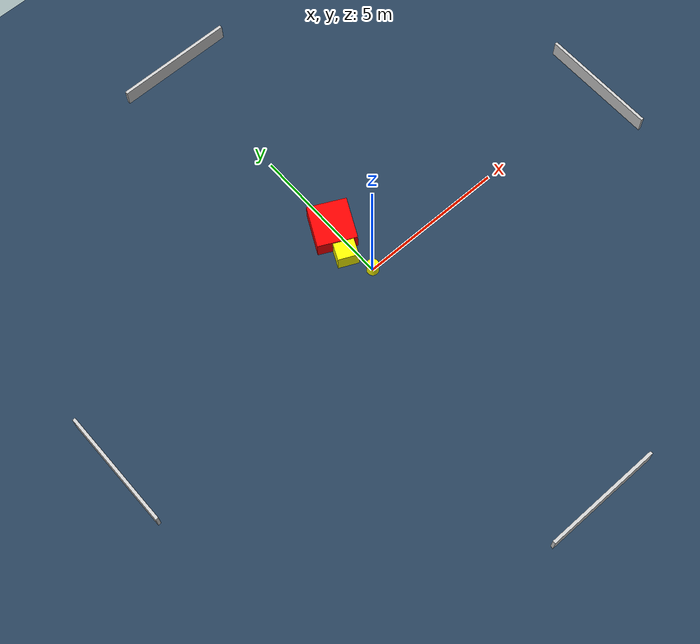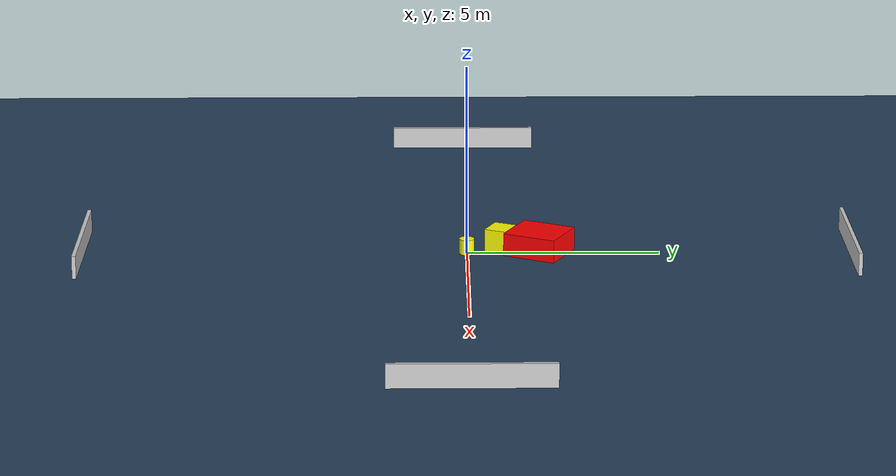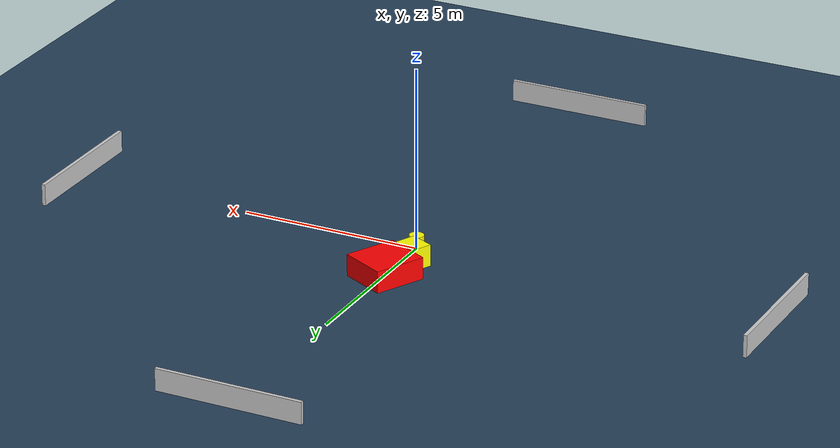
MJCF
<?xml version="1.0" ?>
<mujoco model="generated_environment">
  <option timestep="0.01" integrator="RK4" cone="elliptic"/>
  <default>
    <geom density="1"/>
  </default>
  <asset>
    <texture builtin="gradient" height="3072" name="skybox" rgb1="0.3 0.5 0.7" rgb2="0 0 0" type="skybox" width="512"/>
    <texture builtin="checker" height="300" name="groundplane" rgb1="0.2 0.3 0.4" rgb2="0.1 0.2 0.3" type="2d" width="300"/>
    <material name="groundplane" reflectance="0.2" texrepeat="5 5" texture="groundplane"/>
  </asset>
  <worldbody>
    <light dir="0 0 -1" directional="true" pos="0 0 1.5"/>
    <geom condim="3" friction="0.5 0.005 0.001" material="groundplane" name="floor" pos="0 0 0" size="0 0 0.05" type="plane"/>
    <body name="walls">
      <geom name="wall_1" condim="4" pos="-10.0 0.0 0.3" rgba="0.800000011920929 0.800000011920929 0.800000011920929 1.0" size="0.05 2.0 0.3" type="box"/>
      <geom name="wall_2" condim="4" pos="10.0 0.0 0.3" rgba="0.800000011920929 0.800000011920929 0.800000011920929 1.0" size="0.05 2.0 0.3" type="box"/>
      <geom name="wall_3" condim="4" pos="0.0 -10.0 0.3" rgba="0.800000011920929 0.800000011920929 0.800000011920929 1.0" size="2.0 0.05 0.3" type="box"/>
      <geom name="wall_4" condim="4" pos="0.0 10.0 0.3" rgba="0.800000011920929 0.800000011920929 0.800000011920929 1.0" size="2.0 0.05 0.3" type="box"/>
    </body>
    <body name="robot">
      <joint name="joint_x" type="slide" pos="0 0 0" axis="1 0 0"/>
      <joint name="joint_y" type="slide" pos="0 0 0" axis="0 1 0"/>
      <geom name="robot" type="cylinder" pos="0.0 0.0 0.2" size="0.2 0.2 0.0" mass="5.0" friction="1.0 0.005 0.0001" condim="4" rgba="1.0 1.0 0.0 1.0"/>
    </body>
    <body name="obstacle_1_movable">
      <geom name="obstacle_1_movable" condim="4" pos="-0.3440573781237256 0.8781682578305763 0.3" euler="0 0 334.95518821738824" friction="0.0 0.005 0.001" rgba="1.0 1.0 0.0 1.0" size="0.3446436016589307 0.29402625560558615 0.3" type="box" mass="0.1"/>
      <joint type="free"/>
    </body>
    <body name="obstacle_2_static">
      <geom name="obstacle_2_static" condim="4" pos="-0.04944176026252546 1.8826821515566883 0.3" euler="0 0 243.4868186229952" friction="0.0 0.005 0.001" rgba="1.0 0.0 0.0 1.0" size="0.7180292197702098 0.6586852227044828 0.3" type="box"/>
    </body>
  </worldbody>
  <actuator>
    <motor name="actuator_x" joint="joint_x" gear="1" ctrlrange="-1 1"/>
    <motor name="actuator_y" joint="joint_y" gear="1" ctrlrange="-1 1"/>
  </actuator>
</mujoco>
